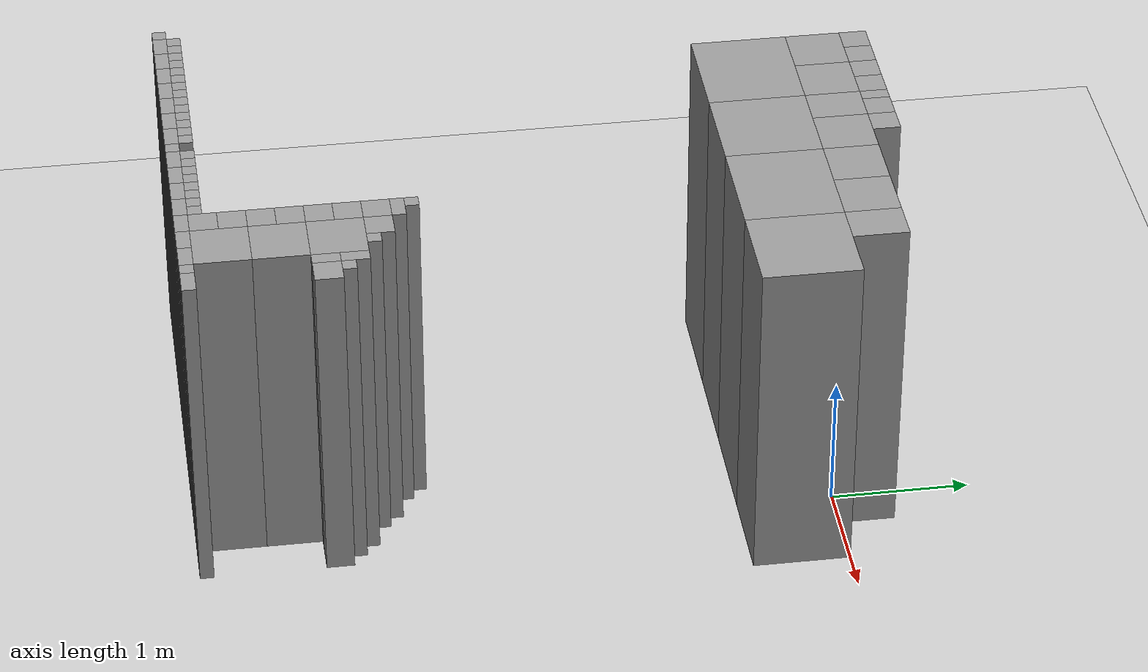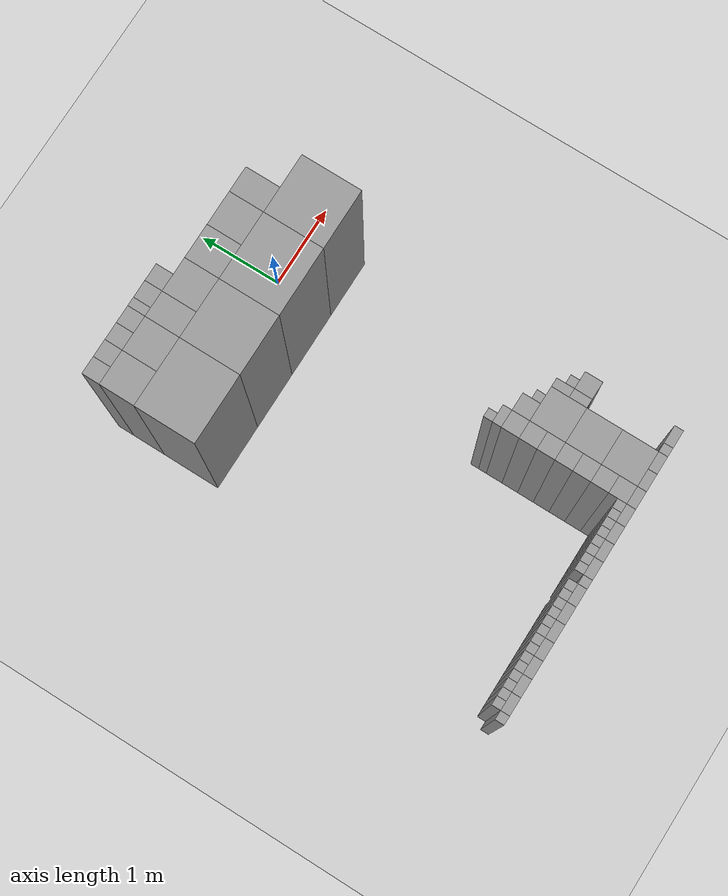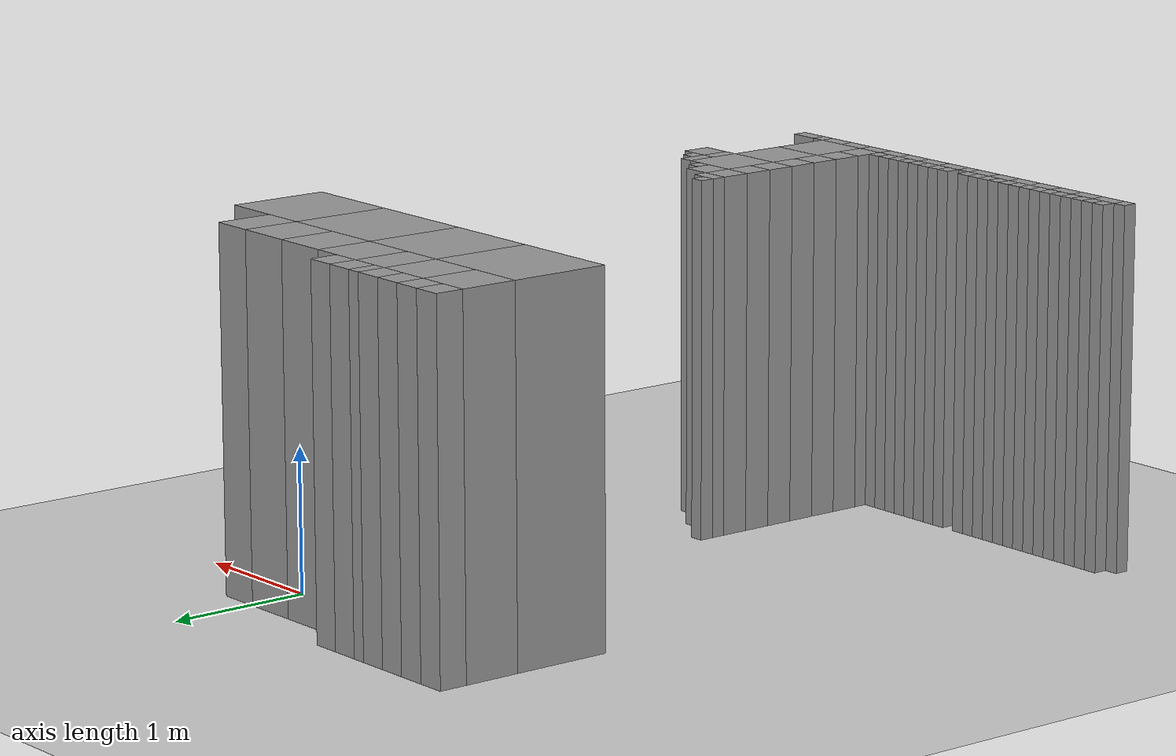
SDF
<sdf version="1.6">
 <world name="default">
  <include><uri>model://sun</uri></include>
  <include><uri>model://ground_plane</uri></include>
  <model name="stage_test">
   <static>1</static>
   <pose>-12 -12 0 0 0 0</pose>
   <link name="Wall_262">
    <pose>9.8 12.500000000000002 0 0 0 0</pose>
    <collision name="Wall_262_collision">
     <pose>0 0 1.25 0 0 0</pose>
     <geometry><box><size>0.1999999999999993 0.20000000000000107 2.5</size></box></geometry>
    </collision>
    <visual name="Wall_262_visual">
     <pose>0 0 1.25 0 0 0</pose>
     <geometry><box><size>0.1999999999999993 0.20000000000000107 2.5</size></box></geometry>
     <material>
      <script><uri>file://media/materials/scripts/gazebo.material</uri><name>Gazebo/Grey</name></script>
      <ambient>1 1 1 1</ambient>
     </material>
    </visual>
   </link>
   <link name="Wall_263">
    <pose>10.0 12.500000000000002 0 0 0 0</pose>
    <collision name="Wall_263_collision">
     <pose>0 0 1.25 0 0 0</pose>
     <geometry><box><size>0.20000000000000107 0.20000000000000107 2.5</size></box></geometry>
    </collision>
    <visual name="Wall_263_visual">
     <pose>0 0 1.25 0 0 0</pose>
     <geometry><box><size>0.20000000000000107 0.20000000000000107 2.5</size></box></geometry>
     <material>
      <script><uri>file://media/materials/scripts/gazebo.material</uri><name>Gazebo/Grey</name></script>
      <ambient>1 1 1 1</ambient>
     </material>
    </visual>
   </link>
   <link name="Wall_264">
    <pose>9.900000000000002 12.2 0 0 0 0</pose>
    <collision name="Wall_264_collision">
     <pose>0 0 1.25 0 0 0</pose>
     <geometry><box><size>0.40000000000000036 0.40000000000000036 2.5</size></box></geometry>
    </collision>
    <visual name="Wall_264_visual">
     <pose>0 0 1.25 0 0 0</pose>
     <geometry><box><size>0.40000000000000036 0.40000000000000036 2.5</size></box></geometry>
     <material>
      <script><uri>file://media/materials/scripts/gazebo.material</uri><name>Gazebo/Grey</name></script>
      <ambient>1 1 1 1</ambient>
     </material>
    </visual>
   </link>
   <link name="Wall_265">
    <pose>10.200000000000001 12.500000000000002 0 0 0 0</pose>
    <collision name="Wall_265_collision">
     <pose>0 0 1.25 0 0 0</pose>
     <geometry><box><size>0.1999999999999993 0.20000000000000107 2.5</size></box></geometry>
    </collision>
    <visual name="Wall_265_visual">
     <pose>0 0 1.25 0 0 0</pose>
     <geometry><box><size>0.1999999999999993 0.20000000000000107 2.5</size></box></geometry>
     <material>
      <script><uri>file://media/materials/scripts/gazebo.material</uri><name>Gazebo/Grey</name></script>
      <ambient>1 1 1 1</ambient>
     </material>
    </visual>
   </link>
   <link name="Wall_266">
    <pose>10.4 12.500000000000002 0 0 0 0</pose>
    <collision name="Wall_266_collision">
     <pose>0 0 1.25 0 0 0</pose>
     <geometry><box><size>0.1999999999999993 0.20000000000000107 2.5</size></box></geometry>
    </collision>
    <visual name="Wall_266_visual">
     <pose>0 0 1.25 0 0 0</pose>
     <geometry><box><size>0.1999999999999993 0.20000000000000107 2.5</size></box></geometry>
     <material>
      <script><uri>file://media/materials/scripts/gazebo.material</uri><name>Gazebo/Grey</name></script>
      <ambient>1 1 1 1</ambient>
     </material>
    </visual>
   </link>
   <link name="Wall_267">
    <pose>10.3 12.2 0 0 0 0</pose>
    <collision name="Wall_267_collision">
     <pose>0 0 1.25 0 0 0</pose>
     <geometry><box><size>0.3999999999999986 0.40000000000000036 2.5</size></box></geometry>
    </collision>
    <visual name="Wall_267_visual">
     <pose>0 0 1.25 0 0 0</pose>
     <geometry><box><size>0.3999999999999986 0.40000000000000036 2.5</size></box></geometry>
     <material>
      <script><uri>file://media/materials/scripts/gazebo.material</uri><name>Gazebo/Grey</name></script>
      <ambient>1 1 1 1</ambient>
     </material>
    </visual>
   </link>
   <link name="Wall_268">
    <pose>10.55 12.500000000000002 0 0 0 0</pose>
    <collision name="Wall_268_collision">
     <pose>0 0 1.25 0 0 0</pose>
     <geometry><box><size>0.10000000000000142 0.20000000000000107 2.5</size></box></geometry>
    </collision>
    <visual name="Wall_268_visual">
     <pose>0 0 1.25 0 0 0</pose>
     <geometry><box><size>0.10000000000000142 0.20000000000000107 2.5</size></box></geometry>
     <material>
      <script><uri>file://media/materials/scripts/gazebo.material</uri><name>Gazebo/Grey</name></script>
      <ambient>1 1 1 1</ambient>
     </material>
    </visual>
   </link>
   <link name="Wall_269">
    <pose>10.700000000000001 12.500000000000002 0 0 0 0</pose>
    <collision name="Wall_269_collision">
     <pose>0 0 1.25 0 0 0</pose>
     <geometry><box><size>0.1999999999999993 0.20000000000000107 2.5</size></box></geometry>
    </collision>
    <visual name="Wall_269_visual">
     <pose>0 0 1.25 0 0 0</pose>
     <geometry><box><size>0.1999999999999993 0.20000000000000107 2.5</size></box></geometry>
     <material>
      <script><uri>file://media/materials/scripts/gazebo.material</uri><name>Gazebo/Grey</name></script>
      <ambient>1 1 1 1</ambient>
     </material>
    </visual>
   </link>
   <link name="Wall_270">
    <pose>10.65 12.2 0 0 0 0</pose>
    <collision name="Wall_270_collision">
     <pose>0 0 1.25 0 0 0</pose>
     <geometry><box><size>0.3000000000000007 0.40000000000000036 2.5</size></box></geometry>
    </collision>
    <visual name="Wall_270_visual">
     <pose>0 0 1.25 0 0 0</pose>
     <geometry><box><size>0.3000000000000007 0.40000000000000036 2.5</size></box></geometry>
     <material>
      <script><uri>file://media/materials/scripts/gazebo.material</uri><name>Gazebo/Grey</name></script>
      <ambient>1 1 1 1</ambient>
     </material>
    </visual>
   </link>
   <link name="Wall_271">
    <pose>10.899999999999999 12.500000000000002 0 0 0 0</pose>
    <collision name="Wall_271_collision">
     <pose>0 0 1.25 0 0 0</pose>
     <geometry><box><size>0.1999999999999993 0.20000000000000107 2.5</size></box></geometry>
    </collision>
    <visual name="Wall_271_visual">
     <pose>0 0 1.25 0 0 0</pose>
     <geometry><box><size>0.1999999999999993 0.20000000000000107 2.5</size></box></geometry>
     <material>
      <script><uri>file://media/materials/scripts/gazebo.material</uri><name>Gazebo/Grey</name></script>
      <ambient>1 1 1 1</ambient>
     </material>
    </visual>
   </link>
   <link name="Wall_273">
    <pose>11.0 12.2 0 0 0 0</pose>
    <collision name="Wall_273_collision">
     <pose>0 0 1.25 0 0 0</pose>
     <geometry><box><size>0.40000000000000036 0.40000000000000036 2.5</size></box></geometry>
    </collision>
    <visual name="Wall_273_visual">
     <pose>0 0 1.25 0 0 0</pose>
     <geometry><box><size>0.40000000000000036 0.40000000000000036 2.5</size></box></geometry>
     <material>
      <script><uri>file://media/materials/scripts/gazebo.material</uri><name>Gazebo/Grey</name></script>
      <ambient>1 1 1 1</ambient>
     </material>
    </visual>
   </link>
   <link name="Wall_276">
    <pose>11.400000000000002 12.2 0 0 0 0</pose>
    <collision name="Wall_276_collision">
     <pose>0 0 1.25 0 0 0</pose>
     <geometry><box><size>0.40000000000000036 0.40000000000000036 2.5</size></box></geometry>
    </collision>
    <visual name="Wall_276_visual">
     <pose>0 0 1.25 0 0 0</pose>
     <geometry><box><size>0.40000000000000036 0.40000000000000036 2.5</size></box></geometry>
     <material>
      <script><uri>file://media/materials/scripts/gazebo.material</uri><name>Gazebo/Grey</name></script>
      <ambient>1 1 1 1</ambient>
     </material>
    </visual>
   </link>
   <link name="Wall_279">
    <pose>11.8 12.2 0 0 0 0</pose>
    <collision name="Wall_279_collision">
     <pose>0 0 1.25 0 0 0</pose>
     <geometry><box><size>0.3999999999999986 0.40000000000000036 2.5</size></box></geometry>
    </collision>
    <visual name="Wall_279_visual">
     <pose>0 0 1.25 0 0 0</pose>
     <geometry><box><size>0.3999999999999986 0.40000000000000036 2.5</size></box></geometry>
     <material>
      <script><uri>file://media/materials/scripts/gazebo.material</uri><name>Gazebo/Grey</name></script>
      <ambient>1 1 1 1</ambient>
     </material>
    </visual>
   </link>
   <link name="Wall_472">
    <pose>10.100000000000001 11.65 0 0 0 0</pose>
    <collision name="Wall_472_collision">
     <pose>0 0 1.25 0 0 0</pose>
     <geometry><box><size>0.7999999999999989 0.6999999999999993 2.5</size></box></geometry>
    </collision>
    <visual name="Wall_472_visual">
     <pose>0 0 1.25 0 0 0</pose>
     <geometry><box><size>0.7999999999999989 0.6999999999999993 2.5</size></box></geometry>
     <material>
      <script><uri>file://media/materials/scripts/gazebo.material</uri><name>Gazebo/Grey</name></script>
      <ambient>1 1 1 1</ambient>
     </material>
    </visual>
   </link>
   <link name="Wall_473">
    <pose>10.850000000000001 11.65 0 0 0 0</pose>
    <collision name="Wall_473_collision">
     <pose>0 0 1.25 0 0 0</pose>
     <geometry><box><size>0.7000000000000011 0.6999999999999993 2.5</size></box></geometry>
    </collision>
    <visual name="Wall_473_visual">
     <pose>0 0 1.25 0 0 0</pose>
     <geometry><box><size>0.7000000000000011 0.6999999999999993 2.5</size></box></geometry>
     <material>
      <script><uri>file://media/materials/scripts/gazebo.material</uri><name>Gazebo/Grey</name></script>
      <ambient>1 1 1 1</ambient>
     </material>
    </visual>
   </link>
   <link name="Wall_474">
    <pose>11.600000000000001 11.65 0 0 0 0</pose>
    <collision name="Wall_474_collision">
     <pose>0 0 1.25 0 0 0</pose>
     <geometry><box><size>0.7999999999999989 0.6999999999999993 2.5</size></box></geometry>
    </collision>
    <visual name="Wall_474_visual">
     <pose>0 0 1.25 0 0 0</pose>
     <geometry><box><size>0.7999999999999989 0.6999999999999993 2.5</size></box></geometry>
     <material>
      <script><uri>file://media/materials/scripts/gazebo.material</uri><name>Gazebo/Grey</name></script>
      <ambient>1 1 1 1</ambient>
     </material>
    </visual>
   </link>
   <link name="Wall_475">
    <pose>11.45 9.05 0 0 0 0</pose>
    <collision name="Wall_475_collision">
     <pose>0 0 1.25 0 0 0</pose>
     <geometry><box><size>0.09999999999999964 0.09999999999999964 2.5</size></box></geometry>
    </collision>
    <visual name="Wall_475_visual">
     <pose>0 0 1.25 0 0 0</pose>
     <geometry><box><size>0.09999999999999964 0.09999999999999964 2.5</size></box></geometry>
     <material>
      <script><uri>file://media/materials/scripts/gazebo.material</uri><name>Gazebo/Grey</name></script>
      <ambient>1 1 1 1</ambient>
     </material>
    </visual>
   </link>
   <link name="Wall_476">
    <pose>9.15 7.550000000000001 0 0 0 0</pose>
    <collision name="Wall_476_collision">
     <pose>0 0 1.25 0 0 0</pose>
     <geometry><box><size>0.10000000000000142 0.10000000000000053 2.5</size></box></geometry>
    </collision>
    <visual name="Wall_476_visual">
     <pose>0 0 1.25 0 0 0</pose>
     <geometry><box><size>0.10000000000000142 0.10000000000000053 2.5</size></box></geometry>
     <material>
      <script><uri>file://media/materials/scripts/gazebo.material</uri><name>Gazebo/Grey</name></script>
      <ambient>1 1 1 1</ambient>
     </material>
    </visual>
   </link>
   <link name="Wall_477">
    <pose>9.25 7.550000000000001 0 0 0 0</pose>
    <collision name="Wall_477_collision">
     <pose>0 0 1.25 0 0 0</pose>
     <geometry><box><size>0.09999999999999964 0.10000000000000053 2.5</size></box></geometry>
    </collision>
    <visual name="Wall_477_visual">
     <pose>0 0 1.25 0 0 0</pose>
     <geometry><box><size>0.09999999999999964 0.10000000000000053 2.5</size></box></geometry>
     <material>
      <script><uri>file://media/materials/scripts/gazebo.material</uri><name>Gazebo/Grey</name></script>
      <ambient>1 1 1 1</ambient>
     </material>
    </visual>
   </link>
   <link name="Wall_478">
    <pose>9.350000000000001 7.550000000000001 0 0 0 0</pose>
    <collision name="Wall_478_collision">
     <pose>0 0 1.25 0 0 0</pose>
     <geometry><box><size>0.09999999999999964 0.10000000000000053 2.5</size></box></geometry>
    </collision>
    <visual name="Wall_478_visual">
     <pose>0 0 1.25 0 0 0</pose>
     <geometry><box><size>0.09999999999999964 0.10000000000000053 2.5</size></box></geometry>
     <material>
      <script><uri>file://media/materials/scripts/gazebo.material</uri><name>Gazebo/Grey</name></script>
      <ambient>1 1 1 1</ambient>
     </material>
    </visual>
   </link>
   <link name="Wall_479">
    <pose>9.45 7.550000000000001 0 0 0 0</pose>
    <collision name="Wall_479_collision">
     <pose>0 0 1.25 0 0 0</pose>
     <geometry><box><size>0.09999999999999964 0.10000000000000053 2.5</size></box></geometry>
    </collision>
    <visual name="Wall_479_visual">
     <pose>0 0 1.25 0 0 0</pose>
     <geometry><box><size>0.09999999999999964 0.10000000000000053 2.5</size></box></geometry>
     <material>
      <script><uri>file://media/materials/scripts/gazebo.material</uri><name>Gazebo/Grey</name></script>
      <ambient>1 1 1 1</ambient>
     </material>
    </visual>
   </link>
   <link name="Wall_480">
    <pose>9.55 7.550000000000001 0 0 0 0</pose>
    <collision name="Wall_480_collision">
     <pose>0 0 1.25 0 0 0</pose>
     <geometry><box><size>0.10000000000000142 0.10000000000000053 2.5</size></box></geometry>
    </collision>
    <visual name="Wall_480_visual">
     <pose>0 0 1.25 0 0 0</pose>
     <geometry><box><size>0.10000000000000142 0.10000000000000053 2.5</size></box></geometry>
     <material>
      <script><uri>file://media/materials/scripts/gazebo.material</uri><name>Gazebo/Grey</name></script>
      <ambient>1 1 1 1</ambient>
     </material>
    </visual>
   </link>
   <link name="Wall_481">
    <pose>9.650000000000002 7.550000000000001 0 0 0 0</pose>
    <collision name="Wall_481_collision">
     <pose>0 0 1.25 0 0 0</pose>
     <geometry><box><size>0.09999999999999964 0.10000000000000053 2.5</size></box></geometry>
    </collision>
    <visual name="Wall_481_visual">
     <pose>0 0 1.25 0 0 0</pose>
     <geometry><box><size>0.09999999999999964 0.10000000000000053 2.5</size></box></geometry>
     <material>
      <script><uri>file://media/materials/scripts/gazebo.material</uri><name>Gazebo/Grey</name></script>
      <ambient>1 1 1 1</ambient>
     </material>
    </visual>
   </link>
   <link name="Wall_482">
    <pose>9.75 7.550000000000001 0 0 0 0</pose>
    <collision name="Wall_482_collision">
     <pose>0 0 1.25 0 0 0</pose>
     <geometry><box><size>0.09999999999999964 0.10000000000000053 2.5</size></box></geometry>
    </collision>
    <visual name="Wall_482_visual">
     <pose>0 0 1.25 0 0 0</pose>
     <geometry><box><size>0.09999999999999964 0.10000000000000053 2.5</size></box></geometry>
     <material>
      <script><uri>file://media/materials/scripts/gazebo.material</uri><name>Gazebo/Grey</name></script>
      <ambient>1 1 1 1</ambient>
     </material>
    </visual>
   </link>
   <link name="Wall_483">
    <pose>9.850000000000001 7.550000000000001 0 0 0 0</pose>
    <collision name="Wall_483_collision">
     <pose>0 0 1.25 0 0 0</pose>
     <geometry><box><size>0.09999999999999964 0.10000000000000053 2.5</size></box></geometry>
    </collision>
    <visual name="Wall_483_visual">
     <pose>0 0 1.25 0 0 0</pose>
     <geometry><box><size>0.09999999999999964 0.10000000000000053 2.5</size></box></geometry>
     <material>
      <script><uri>file://media/materials/scripts/gazebo.material</uri><name>Gazebo/Grey</name></script>
      <ambient>1 1 1 1</ambient>
     </material>
    </visual>
   </link>
   <link name="Wall_484">
    <pose>9.95 7.550000000000001 0 0 0 0</pose>
    <collision name="Wall_484_collision">
     <pose>0 0 1.25 0 0 0</pose>
     <geometry><box><size>0.09999999999999964 0.10000000000000053 2.5</size></box></geometry>
    </collision>
    <visual name="Wall_484_visual">
     <pose>0 0 1.25 0 0 0</pose>
     <geometry><box><size>0.09999999999999964 0.10000000000000053 2.5</size></box></geometry>
     <material>
      <script><uri>file://media/materials/scripts/gazebo.material</uri><name>Gazebo/Grey</name></script>
      <ambient>1 1 1 1</ambient>
     </material>
    </visual>
   </link>
   <link name="Wall_485">
    <pose>10.05 7.550000000000001 0 0 0 0</pose>
    <collision name="Wall_485_collision">
     <pose>0 0 1.25 0 0 0</pose>
     <geometry><box><size>0.10000000000000142 0.10000000000000053 2.5</size></box></geometry>
    </collision>
    <visual name="Wall_485_visual">
     <pose>0 0 1.25 0 0 0</pose>
     <geometry><box><size>0.10000000000000142 0.10000000000000053 2.5</size></box></geometry>
     <material>
      <script><uri>file://media/materials/scripts/gazebo.material</uri><name>Gazebo/Grey</name></script>
      <ambient>1 1 1 1</ambient>
     </material>
    </visual>
   </link>
   <link name="Wall_486">
    <pose>10.150000000000002 7.550000000000001 0 0 0 0</pose>
    <collision name="Wall_486_collision">
     <pose>0 0 1.25 0 0 0</pose>
     <geometry><box><size>0.09999999999999964 0.10000000000000053 2.5</size></box></geometry>
    </collision>
    <visual name="Wall_486_visual">
     <pose>0 0 1.25 0 0 0</pose>
     <geometry><box><size>0.09999999999999964 0.10000000000000053 2.5</size></box></geometry>
     <material>
      <script><uri>file://media/materials/scripts/gazebo.material</uri><name>Gazebo/Grey</name></script>
      <ambient>1 1 1 1</ambient>
     </material>
    </visual>
   </link>
   <link name="Wall_487">
    <pose>10.25 7.550000000000001 0 0 0 0</pose>
    <collision name="Wall_487_collision">
     <pose>0 0 1.25 0 0 0</pose>
     <geometry><box><size>0.09999999999999964 0.10000000000000053 2.5</size></box></geometry>
    </collision>
    <visual name="Wall_487_visual">
     <pose>0 0 1.25 0 0 0</pose>
     <geometry><box><size>0.09999999999999964 0.10000000000000053 2.5</size></box></geometry>
     <material>
      <script><uri>file://media/materials/scripts/gazebo.material</uri><name>Gazebo/Grey</name></script>
      <ambient>1 1 1 1</ambient>
     </material>
    </visual>
   </link>
   <link name="Wall_488">
    <pose>10.350000000000001 7.550000000000001 0 0 0 0</pose>
    <collision name="Wall_488_collision">
     <pose>0 0 1.25 0 0 0</pose>
     <geometry><box><size>0.09999999999999964 0.10000000000000053 2.5</size></box></geometry>
    </collision>
    <visual name="Wall_488_visual">
     <pose>0 0 1.25 0 0 0</pose>
     <geometry><box><size>0.09999999999999964 0.10000000000000053 2.5</size></box></geometry>
     <material>
      <script><uri>file://media/materials/scripts/gazebo.material</uri><name>Gazebo/Grey</name></script>
      <ambient>1 1 1 1</ambient>
     </material>
    </visual>
   </link>
   <link name="Wall_489">
    <pose>10.45 7.550000000000001 0 0 0 0</pose>
    <collision name="Wall_489_collision">
     <pose>0 0 1.25 0 0 0</pose>
     <geometry><box><size>0.09999999999999964 0.10000000000000053 2.5</size></box></geometry>
    </collision>
    <visual name="Wall_489_visual">
     <pose>0 0 1.25 0 0 0</pose>
     <geometry><box><size>0.09999999999999964 0.10000000000000053 2.5</size></box></geometry>
     <material>
      <script><uri>file://media/materials/scripts/gazebo.material</uri><name>Gazebo/Grey</name></script>
      <ambient>1 1 1 1</ambient>
     </material>
    </visual>
   </link>
   <link name="Wall_490">
    <pose>9.05 7.45 0 0 0 0</pose>
    <collision name="Wall_490_collision">
     <pose>0 0 1.25 0 0 0</pose>
     <geometry><box><size>0.09999999999999964 0.09999999999999964 2.5</size></box></geometry>
    </collision>
    <visual name="Wall_490_visual">
     <pose>0 0 1.25 0 0 0</pose>
     <geometry><box><size>0.09999999999999964 0.09999999999999964 2.5</size></box></geometry>
     <material>
      <script><uri>file://media/materials/scripts/gazebo.material</uri><name>Gazebo/Grey</name></script>
      <ambient>1 1 1 1</ambient>
     </material>
    </visual>
   </link>
   <link name="Wall_491">
    <pose>9.2 7.45 0 0 0 0</pose>
    <collision name="Wall_491_collision">
     <pose>0 0 1.25 0 0 0</pose>
     <geometry><box><size>0.20000000000000107 0.09999999999999964 2.5</size></box></geometry>
    </collision>
    <visual name="Wall_491_visual">
     <pose>0 0 1.25 0 0 0</pose>
     <geometry><box><size>0.20000000000000107 0.09999999999999964 2.5</size></box></geometry>
     <material>
      <script><uri>file://media/materials/scripts/gazebo.material</uri><name>Gazebo/Grey</name></script>
      <ambient>1 1 1 1</ambient>
     </material>
    </visual>
   </link>
   <link name="Wall_492">
    <pose>9.4 7.45 0 0 0 0</pose>
    <collision name="Wall_492_collision">
     <pose>0 0 1.25 0 0 0</pose>
     <geometry><box><size>0.1999999999999993 0.09999999999999964 2.5</size></box></geometry>
    </collision>
    <visual name="Wall_492_visual">
     <pose>0 0 1.25 0 0 0</pose>
     <geometry><box><size>0.1999999999999993 0.09999999999999964 2.5</size></box></geometry>
     <material>
      <script><uri>file://media/materials/scripts/gazebo.material</uri><name>Gazebo/Grey</name></script>
      <ambient>1 1 1 1</ambient>
     </material>
    </visual>
   </link>
   <link name="Wall_493">
    <pose>9.600000000000001 7.45 0 0 0 0</pose>
    <collision name="Wall_493_collision">
     <pose>0 0 1.25 0 0 0</pose>
     <geometry><box><size>0.20000000000000107 0.09999999999999964 2.5</size></box></geometry>
    </collision>
    <visual name="Wall_493_visual">
     <pose>0 0 1.25 0 0 0</pose>
     <geometry><box><size>0.20000000000000107 0.09999999999999964 2.5</size></box></geometry>
     <material>
      <script><uri>file://media/materials/scripts/gazebo.material</uri><name>Gazebo/Grey</name></script>
      <ambient>1 1 1 1</ambient>
     </material>
    </visual>
   </link>
   <link name="Wall_494">
    <pose>9.8 7.45 0 0 0 0</pose>
    <collision name="Wall_494_collision">
     <pose>0 0 1.25 0 0 0</pose>
     <geometry><box><size>0.1999999999999993 0.09999999999999964 2.5</size></box></geometry>
    </collision>
    <visual name="Wall_494_visual">
     <pose>0 0 1.25 0 0 0</pose>
     <geometry><box><size>0.1999999999999993 0.09999999999999964 2.5</size></box></geometry>
     <material>
      <script><uri>file://media/materials/scripts/gazebo.material</uri><name>Gazebo/Grey</name></script>
      <ambient>1 1 1 1</ambient>
     </material>
    </visual>
   </link>
   <link name="Wall_495">
    <pose>10.0 7.45 0 0 0 0</pose>
    <collision name="Wall_495_collision">
     <pose>0 0 1.25 0 0 0</pose>
     <geometry><box><size>0.20000000000000107 0.09999999999999964 2.5</size></box></geometry>
    </collision>
    <visual name="Wall_495_visual">
     <pose>0 0 1.25 0 0 0</pose>
     <geometry><box><size>0.20000000000000107 0.09999999999999964 2.5</size></box></geometry>
     <material>
      <script><uri>file://media/materials/scripts/gazebo.material</uri><name>Gazebo/Grey</name></script>
      <ambient>1 1 1 1</ambient>
     </material>
    </visual>
   </link>
   <link name="Wall_496">
    <pose>10.200000000000001 7.45 0 0 0 0</pose>
    <collision name="Wall_496_collision">
     <pose>0 0 1.25 0 0 0</pose>
     <geometry><box><size>0.1999999999999993 0.09999999999999964 2.5</size></box></geometry>
    </collision>
    <visual name="Wall_496_visual">
     <pose>0 0 1.25 0 0 0</pose>
     <geometry><box><size>0.1999999999999993 0.09999999999999964 2.5</size></box></geometry>
     <material>
      <script><uri>file://media/materials/scripts/gazebo.material</uri><name>Gazebo/Grey</name></script>
      <ambient>1 1 1 1</ambient>
     </material>
    </visual>
   </link>
   <link name="Wall_497">
    <pose>10.4 7.45 0 0 0 0</pose>
    <collision name="Wall_497_collision">
     <pose>0 0 1.25 0 0 0</pose>
     <geometry><box><size>0.1999999999999993 0.09999999999999964 2.5</size></box></geometry>
    </collision>
    <visual name="Wall_497_visual">
     <pose>0 0 1.25 0 0 0</pose>
     <geometry><box><size>0.1999999999999993 0.09999999999999964 2.5</size></box></geometry>
     <material>
      <script><uri>file://media/materials/scripts/gazebo.material</uri><name>Gazebo/Grey</name></script>
      <ambient>1 1 1 1</ambient>
     </material>
    </visual>
   </link>
   <link name="Wall_498">
    <pose>10.650000000000002 7.550000000000001 0 0 0 0</pose>
    <collision name="Wall_498_collision">
     <pose>0 0 1.25 0 0 0</pose>
     <geometry><box><size>0.09999999999999964 0.10000000000000053 2.5</size></box></geometry>
    </collision>
    <visual name="Wall_498_visual">
     <pose>0 0 1.25 0 0 0</pose>
     <geometry><box><size>0.09999999999999964 0.10000000000000053 2.5</size></box></geometry>
     <material>
      <script><uri>file://media/materials/scripts/gazebo.material</uri><name>Gazebo/Grey</name></script>
      <ambient>1 1 1 1</ambient>
     </material>
    </visual>
   </link>
   <link name="Wall_499">
    <pose>10.75 7.550000000000001 0 0 0 0</pose>
    <collision name="Wall_499_collision">
     <pose>0 0 1.25 0 0 0</pose>
     <geometry><box><size>0.09999999999999964 0.10000000000000053 2.5</size></box></geometry>
    </collision>
    <visual name="Wall_499_visual">
     <pose>0 0 1.25 0 0 0</pose>
     <geometry><box><size>0.09999999999999964 0.10000000000000053 2.5</size></box></geometry>
     <material>
      <script><uri>file://media/materials/scripts/gazebo.material</uri><name>Gazebo/Grey</name></script>
      <ambient>1 1 1 1</ambient>
     </material>
    </visual>
   </link>
   <link name="Wall_500">
    <pose>10.850000000000001 7.550000000000001 0 0 0 0</pose>
    <collision name="Wall_500_collision">
     <pose>0 0 1.25 0 0 0</pose>
     <geometry><box><size>0.09999999999999964 0.10000000000000053 2.5</size></box></geometry>
    </collision>
    <visual name="Wall_500_visual">
     <pose>0 0 1.25 0 0 0</pose>
     <geometry><box><size>0.09999999999999964 0.10000000000000053 2.5</size></box></geometry>
     <material>
      <script><uri>file://media/materials/scripts/gazebo.material</uri><name>Gazebo/Grey</name></script>
      <ambient>1 1 1 1</ambient>
     </material>
    </visual>
   </link>
   <link name="Wall_501">
    <pose>10.95 7.550000000000001 0 0 0 0</pose>
    <collision name="Wall_501_collision">
     <pose>0 0 1.25 0 0 0</pose>
     <geometry><box><size>0.09999999999999964 0.10000000000000053 2.5</size></box></geometry>
    </collision>
    <visual name="Wall_501_visual">
     <pose>0 0 1.25 0 0 0</pose>
     <geometry><box><size>0.09999999999999964 0.10000000000000053 2.5</size></box></geometry>
     <material>
      <script><uri>file://media/materials/scripts/gazebo.material</uri><name>Gazebo/Grey</name></script>
      <ambient>1 1 1 1</ambient>
     </material>
    </visual>
   </link>
   <link name="Wall_502">
    <pose>11.05 7.550000000000001 0 0 0 0</pose>
    <collision name="Wall_502_collision">
     <pose>0 0 1.25 0 0 0</pose>
     <geometry><box><size>0.10000000000000142 0.10000000000000053 2.5</size></box></geometry>
    </collision>
    <visual name="Wall_502_visual">
     <pose>0 0 1.25 0 0 0</pose>
     <geometry><box><size>0.10000000000000142 0.10000000000000053 2.5</size></box></geometry>
     <material>
      <script><uri>file://media/materials/scripts/gazebo.material</uri><name>Gazebo/Grey</name></script>
      <ambient>1 1 1 1</ambient>
     </material>
    </visual>
   </link>
   <link name="Wall_503">
    <pose>11.150000000000002 7.550000000000001 0 0 0 0</pose>
    <collision name="Wall_503_collision">
     <pose>0 0 1.25 0 0 0</pose>
     <geometry><box><size>0.09999999999999964 0.10000000000000053 2.5</size></box></geometry>
    </collision>
    <visual name="Wall_503_visual">
     <pose>0 0 1.25 0 0 0</pose>
     <geometry><box><size>0.09999999999999964 0.10000000000000053 2.5</size></box></geometry>
     <material>
      <script><uri>file://media/materials/scripts/gazebo.material</uri><name>Gazebo/Grey</name></script>
      <ambient>1 1 1 1</ambient>
     </material>
    </visual>
   </link>
   <link name="Wall_504">
    <pose>11.5 8.95 0 0 0 0</pose>
    <collision name="Wall_504_collision">
     <pose>0 0 1.25 0 0 0</pose>
     <geometry><box><size>0.20000000000000107 0.09999999999999964 2.5</size></box></geometry>
    </collision>
    <visual name="Wall_504_visual">
     <pose>0 0 1.25 0 0 0</pose>
     <geometry><box><size>0.20000000000000107 0.09999999999999964 2.5</size></box></geometry>
     <material>
      <script><uri>file://media/materials/scripts/gazebo.material</uri><name>Gazebo/Grey</name></script>
      <ambient>1 1 1 1</ambient>
     </material>
    </visual>
   </link>
   <link name="Wall_505">
    <pose>11.5 8.8 0 0 0 0</pose>
    <collision name="Wall_505_collision">
     <pose>0 0 1.25 0 0 0</pose>
     <geometry><box><size>0.20000000000000107 0.1999999999999993 2.5</size></box></geometry>
    </collision>
    <visual name="Wall_505_visual">
     <pose>0 0 1.25 0 0 0</pose>
     <geometry><box><size>0.20000000000000107 0.1999999999999993 2.5</size></box></geometry>
     <material>
      <script><uri>file://media/materials/scripts/gazebo.material</uri><name>Gazebo/Grey</name></script>
      <ambient>1 1 1 1</ambient>
     </material>
    </visual>
   </link>
   <link name="Wall_506">
    <pose>11.5 8.600000000000001 0 0 0 0</pose>
    <collision name="Wall_506_collision">
     <pose>0 0 1.25 0 0 0</pose>
     <geometry><box><size>0.20000000000000107 0.20000000000000107 2.5</size></box></geometry>
    </collision>
    <visual name="Wall_506_visual">
     <pose>0 0 1.25 0 0 0</pose>
     <geometry><box><size>0.20000000000000107 0.20000000000000107 2.5</size></box></geometry>
     <material>
      <script><uri>file://media/materials/scripts/gazebo.material</uri><name>Gazebo/Grey</name></script>
      <ambient>1 1 1 1</ambient>
     </material>
    </visual>
   </link>
   <link name="Wall_507">
    <pose>11.5 8.4 0 0 0 0</pose>
    <collision name="Wall_507_collision">
     <pose>0 0 1.25 0 0 0</pose>
     <geometry><box><size>0.20000000000000107 0.1999999999999993 2.5</size></box></geometry>
    </collision>
    <visual name="Wall_507_visual">
     <pose>0 0 1.25 0 0 0</pose>
     <geometry><box><size>0.20000000000000107 0.1999999999999993 2.5</size></box></geometry>
     <material>
      <script><uri>file://media/materials/scripts/gazebo.material</uri><name>Gazebo/Grey</name></script>
      <ambient>1 1 1 1</ambient>
     </material>
    </visual>
   </link>
   <link name="Wall_508">
    <pose>11.700000000000001 8.8 0 0 0 0</pose>
    <collision name="Wall_508_collision">
     <pose>0 0 1.25 0 0 0</pose>
     <geometry><box><size>0.1999999999999993 0.1999999999999993 2.5</size></box></geometry>
    </collision>
    <visual name="Wall_508_visual">
     <pose>0 0 1.25 0 0 0</pose>
     <geometry><box><size>0.1999999999999993 0.1999999999999993 2.5</size></box></geometry>
     <material>
      <script><uri>file://media/materials/scripts/gazebo.material</uri><name>Gazebo/Grey</name></script>
      <ambient>1 1 1 1</ambient>
     </material>
    </visual>
   </link>
   <link name="Wall_509">
    <pose>11.850000000000001 8.75 0 0 0 0</pose>
    <collision name="Wall_509_collision">
     <pose>0 0 1.25 0 0 0</pose>
     <geometry><box><size>0.09999999999999964 0.09999999999999964 2.5</size></box></geometry>
    </collision>
    <visual name="Wall_509_visual">
     <pose>0 0 1.25 0 0 0</pose>
     <geometry><box><size>0.09999999999999964 0.09999999999999964 2.5</size></box></geometry>
     <material>
      <script><uri>file://media/materials/scripts/gazebo.material</uri><name>Gazebo/Grey</name></script>
      <ambient>1 1 1 1</ambient>
     </material>
    </visual>
   </link>
   <link name="Wall_510">
    <pose>11.8 8.500000000000002 0 0 0 0</pose>
    <collision name="Wall_510_collision">
     <pose>0 0 1.25 0 0 0</pose>
     <geometry><box><size>0.3999999999999986 0.40000000000000036 2.5</size></box></geometry>
    </collision>
    <visual name="Wall_510_visual">
     <pose>0 0 1.25 0 0 0</pose>
     <geometry><box><size>0.3999999999999986 0.40000000000000036 2.5</size></box></geometry>
     <material>
      <script><uri>file://media/materials/scripts/gazebo.material</uri><name>Gazebo/Grey</name></script>
      <ambient>1 1 1 1</ambient>
     </material>
    </visual>
   </link>
   <link name="Wall_511">
    <pose>11.5 8.2 0 0 0 0</pose>
    <collision name="Wall_511_collision">
     <pose>0 0 1.25 0 0 0</pose>
     <geometry><box><size>0.20000000000000107 0.20000000000000107 2.5</size></box></geometry>
    </collision>
    <visual name="Wall_511_visual">
     <pose>0 0 1.25 0 0 0</pose>
     <geometry><box><size>0.20000000000000107 0.20000000000000107 2.5</size></box></geometry>
     <material>
      <script><uri>file://media/materials/scripts/gazebo.material</uri><name>Gazebo/Grey</name></script>
      <ambient>1 1 1 1</ambient>
     </material>
    </visual>
   </link>
   <link name="Wall_512">
    <pose>11.5 8.0 0 0 0 0</pose>
    <collision name="Wall_512_collision">
     <pose>0 0 1.25 0 0 0</pose>
     <geometry><box><size>0.20000000000000107 0.1999999999999993 2.5</size></box></geometry>
    </collision>
    <visual name="Wall_512_visual">
     <pose>0 0 1.25 0 0 0</pose>
     <geometry><box><size>0.20000000000000107 0.1999999999999993 2.5</size></box></geometry>
     <material>
      <script><uri>file://media/materials/scripts/gazebo.material</uri><name>Gazebo/Grey</name></script>
      <ambient>1 1 1 1</ambient>
     </material>
    </visual>
   </link>
   <link name="Wall_513">
    <pose>11.25 7.550000000000001 0 0 0 0</pose>
    <collision name="Wall_513_collision">
     <pose>0 0 1.25 0 0 0</pose>
     <geometry><box><size>0.09999999999999964 0.10000000000000053 2.5</size></box></geometry>
    </collision>
    <visual name="Wall_513_visual">
     <pose>0 0 1.25 0 0 0</pose>
     <geometry><box><size>0.09999999999999964 0.10000000000000053 2.5</size></box></geometry>
     <material>
      <script><uri>file://media/materials/scripts/gazebo.material</uri><name>Gazebo/Grey</name></script>
      <ambient>1 1 1 1</ambient>
     </material>
    </visual>
   </link>
   <link name="Wall_514">
    <pose>11.350000000000001 7.550000000000001 0 0 0 0</pose>
    <collision name="Wall_514_collision">
     <pose>0 0 1.25 0 0 0</pose>
     <geometry><box><size>0.09999999999999964 0.10000000000000053 2.5</size></box></geometry>
    </collision>
    <visual name="Wall_514_visual">
     <pose>0 0 1.25 0 0 0</pose>
     <geometry><box><size>0.09999999999999964 0.10000000000000053 2.5</size></box></geometry>
     <material>
      <script><uri>file://media/materials/scripts/gazebo.material</uri><name>Gazebo/Grey</name></script>
      <ambient>1 1 1 1</ambient>
     </material>
    </visual>
   </link>
   <link name="Wall_515">
    <pose>11.5 7.800000000000001 0 0 0 0</pose>
    <collision name="Wall_515_collision">
     <pose>0 0 1.25 0 0 0</pose>
     <geometry><box><size>0.20000000000000107 0.20000000000000018 2.5</size></box></geometry>
    </collision>
    <visual name="Wall_515_visual">
     <pose>0 0 1.25 0 0 0</pose>
     <geometry><box><size>0.20000000000000107 0.20000000000000018 2.5</size></box></geometry>
     <material>
      <script><uri>file://media/materials/scripts/gazebo.material</uri><name>Gazebo/Grey</name></script>
      <ambient>1 1 1 1</ambient>
     </material>
    </visual>
   </link>
   <link name="Wall_516">
    <pose>11.5 7.6 0 0 0 0</pose>
    <collision name="Wall_516_collision">
     <pose>0 0 1.25 0 0 0</pose>
     <geometry><box><size>0.20000000000000107 0.20000000000000018 2.5</size></box></geometry>
    </collision>
    <visual name="Wall_516_visual">
     <pose>0 0 1.25 0 0 0</pose>
     <geometry><box><size>0.20000000000000107 0.20000000000000018 2.5</size></box></geometry>
     <material>
      <script><uri>file://media/materials/scripts/gazebo.material</uri><name>Gazebo/Grey</name></script>
      <ambient>1 1 1 1</ambient>
     </material>
    </visual>
   </link>
   <link name="Wall_517">
    <pose>11.8 8.100000000000001 0 0 0 0</pose>
    <collision name="Wall_517_collision">
     <pose>0 0 1.25 0 0 0</pose>
     <geometry><box><size>0.3999999999999986 0.40000000000000036 2.5</size></box></geometry>
    </collision>
    <visual name="Wall_517_visual">
     <pose>0 0 1.25 0 0 0</pose>
     <geometry><box><size>0.3999999999999986 0.40000000000000036 2.5</size></box></geometry>
     <material>
      <script><uri>file://media/materials/scripts/gazebo.material</uri><name>Gazebo/Grey</name></script>
      <ambient>1 1 1 1</ambient>
     </material>
    </visual>
   </link>
   <link name="Wall_518">
    <pose>11.8 7.699999999999999 0 0 0 0</pose>
    <collision name="Wall_518_collision">
     <pose>0 0 1.25 0 0 0</pose>
     <geometry><box><size>0.3999999999999986 0.40000000000000036 2.5</size></box></geometry>
    </collision>
    <visual name="Wall_518_visual">
     <pose>0 0 1.25 0 0 0</pose>
     <geometry><box><size>0.3999999999999986 0.40000000000000036 2.5</size></box></geometry>
     <material>
      <script><uri>file://media/materials/scripts/gazebo.material</uri><name>Gazebo/Grey</name></script>
      <ambient>1 1 1 1</ambient>
     </material>
    </visual>
   </link>
   <link name="Wall_519">
    <pose>10.55 7.45 0 0 0 0</pose>
    <collision name="Wall_519_collision">
     <pose>0 0 1.25 0 0 0</pose>
     <geometry><box><size>0.10000000000000142 0.09999999999999964 2.5</size></box></geometry>
    </collision>
    <visual name="Wall_519_visual">
     <pose>0 0 1.25 0 0 0</pose>
     <geometry><box><size>0.10000000000000142 0.09999999999999964 2.5</size></box></geometry>
     <material>
      <script><uri>file://media/materials/scripts/gazebo.material</uri><name>Gazebo/Grey</name></script>
      <ambient>1 1 1 1</ambient>
     </material>
    </visual>
   </link>
   <link name="Wall_520">
    <pose>10.700000000000001 7.45 0 0 0 0</pose>
    <collision name="Wall_520_collision">
     <pose>0 0 1.25 0 0 0</pose>
     <geometry><box><size>0.1999999999999993 0.09999999999999964 2.5</size></box></geometry>
    </collision>
    <visual name="Wall_520_visual">
     <pose>0 0 1.25 0 0 0</pose>
     <geometry><box><size>0.1999999999999993 0.09999999999999964 2.5</size></box></geometry>
     <material>
      <script><uri>file://media/materials/scripts/gazebo.material</uri><name>Gazebo/Grey</name></script>
      <ambient>1 1 1 1</ambient>
     </material>
    </visual>
   </link>
   <link name="Wall_521">
    <pose>10.899999999999999 7.45 0 0 0 0</pose>
    <collision name="Wall_521_collision">
     <pose>0 0 1.25 0 0 0</pose>
     <geometry><box><size>0.1999999999999993 0.09999999999999964 2.5</size></box></geometry>
    </collision>
    <visual name="Wall_521_visual">
     <pose>0 0 1.25 0 0 0</pose>
     <geometry><box><size>0.1999999999999993 0.09999999999999964 2.5</size></box></geometry>
     <material>
      <script><uri>file://media/materials/scripts/gazebo.material</uri><name>Gazebo/Grey</name></script>
      <ambient>1 1 1 1</ambient>
     </material>
    </visual>
   </link>
   <link name="Wall_522">
    <pose>11.100000000000001 7.45 0 0 0 0</pose>
    <collision name="Wall_522_collision">
     <pose>0 0 1.25 0 0 0</pose>
     <geometry><box><size>0.20000000000000107 0.09999999999999964 2.5</size></box></geometry>
    </collision>
    <visual name="Wall_522_visual">
     <pose>0 0 1.25 0 0 0</pose>
     <geometry><box><size>0.20000000000000107 0.09999999999999964 2.5</size></box></geometry>
     <material>
      <script><uri>file://media/materials/scripts/gazebo.material</uri><name>Gazebo/Grey</name></script>
      <ambient>1 1 1 1</ambient>
     </material>
    </visual>
   </link>
   <link name="Wall_523">
    <pose>11.3 7.45 0 0 0 0</pose>
    <collision name="Wall_523_collision">
     <pose>0 0 1.25 0 0 0</pose>
     <geometry><box><size>0.1999999999999993 0.09999999999999964 2.5</size></box></geometry>
    </collision>
    <visual name="Wall_523_visual">
     <pose>0 0 1.25 0 0 0</pose>
     <geometry><box><size>0.1999999999999993 0.09999999999999964 2.5</size></box></geometry>
     <material>
      <script><uri>file://media/materials/scripts/gazebo.material</uri><name>Gazebo/Grey</name></script>
      <ambient>1 1 1 1</ambient>
     </material>
    </visual>
   </link>
   <link name="Wall_524">
    <pose>11.5 7.45 0 0 0 0</pose>
    <collision name="Wall_524_collision">
     <pose>0 0 1.25 0 0 0</pose>
     <geometry><box><size>0.20000000000000107 0.09999999999999964 2.5</size></box></geometry>
    </collision>
    <visual name="Wall_524_visual">
     <pose>0 0 1.25 0 0 0</pose>
     <geometry><box><size>0.20000000000000107 0.09999999999999964 2.5</size></box></geometry>
     <material>
      <script><uri>file://media/materials/scripts/gazebo.material</uri><name>Gazebo/Grey</name></script>
      <ambient>1 1 1 1</ambient>
     </material>
    </visual>
   </link>
   <link name="Wall_525">
    <pose>11.700000000000001 7.45 0 0 0 0</pose>
    <collision name="Wall_525_collision">
     <pose>0 0 1.25 0 0 0</pose>
     <geometry><box><size>0.1999999999999993 0.09999999999999964 2.5</size></box></geometry>
    </collision>
    <visual name="Wall_525_visual">
     <pose>0 0 1.25 0 0 0</pose>
     <geometry><box><size>0.1999999999999993 0.09999999999999964 2.5</size></box></geometry>
     <material>
      <script><uri>file://media/materials/scripts/gazebo.material</uri><name>Gazebo/Grey</name></script>
      <ambient>1 1 1 1</ambient>
     </material>
    </visual>
   </link>
   <link name="Wall_526">
    <pose>11.899999999999999 7.45 0 0 0 0</pose>
    <collision name="Wall_526_collision">
     <pose>0 0 1.25 0 0 0</pose>
     <geometry><box><size>0.1999999999999993 0.09999999999999964 2.5</size></box></geometry>
    </collision>
    <visual name="Wall_526_visual">
     <pose>0 0 1.25 0 0 0</pose>
     <geometry><box><size>0.1999999999999993 0.09999999999999964 2.5</size></box></geometry>
     <material>
      <script><uri>file://media/materials/scripts/gazebo.material</uri><name>Gazebo/Grey</name></script>
      <ambient>1 1 1 1</ambient>
     </material>
    </visual>
   </link>
   <link name="Wall_573">
    <pose>12.15 12.2 0 0 0 0</pose>
    <collision name="Wall_573_collision">
     <pose>0 0 1.25 0 0 0</pose>
     <geometry><box><size>0.3000000000000007 0.40000000000000036 2.5</size></box></geometry>
    </collision>
    <visual name="Wall_573_visual">
     <pose>0 0 1.25 0 0 0</pose>
     <geometry><box><size>0.3000000000000007 0.40000000000000036 2.5</size></box></geometry>
     <material>
      <script><uri>file://media/materials/scripts/gazebo.material</uri><name>Gazebo/Grey</name></script>
      <ambient>1 1 1 1</ambient>
     </material>
    </visual>
   </link>
   <link name="Wall_810">
    <pose>12.350000000000001 11.65 0 0 0 0</pose>
    <collision name="Wall_810_collision">
     <pose>0 0 1.25 0 0 0</pose>
     <geometry><box><size>0.7000000000000011 0.6999999999999993 2.5</size></box></geometry>
    </collision>
    <visual name="Wall_810_visual">
     <pose>0 0 1.25 0 0 0</pose>
     <geometry><box><size>0.7000000000000011 0.6999999999999993 2.5</size></box></geometry>
     <material>
      <script><uri>file://media/materials/scripts/gazebo.material</uri><name>Gazebo/Grey</name></script>
      <ambient>1 1 1 1</ambient>
     </material>
    </visual>
   </link>
   <link name="Wall_819">
    <pose>12.05 8.600000000000001 0 0 0 0</pose>
    <collision name="Wall_819_collision">
     <pose>0 0 1.25 0 0 0</pose>
     <geometry><box><size>0.10000000000000142 0.20000000000000107 2.5</size></box></geometry>
    </collision>
    <visual name="Wall_819_visual">
     <pose>0 0 1.25 0 0 0</pose>
     <geometry><box><size>0.10000000000000142 0.20000000000000107 2.5</size></box></geometry>
     <material>
      <script><uri>file://media/materials/scripts/gazebo.material</uri><name>Gazebo/Grey</name></script>
      <ambient>1 1 1 1</ambient>
     </material>
    </visual>
   </link>
   <link name="Wall_820">
    <pose>12.05 8.4 0 0 0 0</pose>
    <collision name="Wall_820_collision">
     <pose>0 0 1.25 0 0 0</pose>
     <geometry><box><size>0.10000000000000142 0.1999999999999993 2.5</size></box></geometry>
    </collision>
    <visual name="Wall_820_visual">
     <pose>0 0 1.25 0 0 0</pose>
     <geometry><box><size>0.10000000000000142 0.1999999999999993 2.5</size></box></geometry>
     <material>
      <script><uri>file://media/materials/scripts/gazebo.material</uri><name>Gazebo/Grey</name></script>
      <ambient>1 1 1 1</ambient>
     </material>
    </visual>
   </link>
   <link name="Wall_821">
    <pose>12.150000000000002 8.55 0 0 0 0</pose>
    <collision name="Wall_821_collision">
     <pose>0 0 1.25 0 0 0</pose>
     <geometry><box><size>0.09999999999999964 0.09999999999999964 2.5</size></box></geometry>
    </collision>
    <visual name="Wall_821_visual">
     <pose>0 0 1.25 0 0 0</pose>
     <geometry><box><size>0.09999999999999964 0.09999999999999964 2.5</size></box></geometry>
     <material>
      <script><uri>file://media/materials/scripts/gazebo.material</uri><name>Gazebo/Grey</name></script>
      <ambient>1 1 1 1</ambient>
     </material>
    </visual>
   </link>
   <link name="Wall_822">
    <pose>12.200000000000001 8.4 0 0 0 0</pose>
    <collision name="Wall_822_collision">
     <pose>0 0 1.25 0 0 0</pose>
     <geometry><box><size>0.1999999999999993 0.1999999999999993 2.5</size></box></geometry>
    </collision>
    <visual name="Wall_822_visual">
     <pose>0 0 1.25 0 0 0</pose>
     <geometry><box><size>0.1999999999999993 0.1999999999999993 2.5</size></box></geometry>
     <material>
      <script><uri>file://media/materials/scripts/gazebo.material</uri><name>Gazebo/Grey</name></script>
      <ambient>1 1 1 1</ambient>
     </material>
    </visual>
   </link>
   <link name="Wall_839">
    <pose>12.05 7.45 0 0 0 0</pose>
    <collision name="Wall_839_collision">
     <pose>0 0 1.25 0 0 0</pose>
     <geometry><box><size>0.10000000000000142 0.09999999999999964 2.5</size></box></geometry>
    </collision>
    <visual name="Wall_839_visual">
     <pose>0 0 1.25 0 0 0</pose>
     <geometry><box><size>0.10000000000000142 0.09999999999999964 2.5</size></box></geometry>
     <material>
      <script><uri>file://media/materials/scripts/gazebo.material</uri><name>Gazebo/Grey</name></script>
      <ambient>1 1 1 1</ambient>
     </material>
    </visual>
   </link>
   <link name="Wall_840">
    <pose>12.200000000000001 7.45 0 0 0 0</pose>
    <collision name="Wall_840_collision">
     <pose>0 0 1.25 0 0 0</pose>
     <geometry><box><size>0.1999999999999993 0.09999999999999964 2.5</size></box></geometry>
    </collision>
    <visual name="Wall_840_visual">
     <pose>0 0 1.25 0 0 0</pose>
     <geometry><box><size>0.1999999999999993 0.09999999999999964 2.5</size></box></geometry>
     <material>
      <script><uri>file://media/materials/scripts/gazebo.material</uri><name>Gazebo/Grey</name></script>
      <ambient>1 1 1 1</ambient>
     </material>
    </visual>
   </link>
  </model>
 </world>
</sdf>
